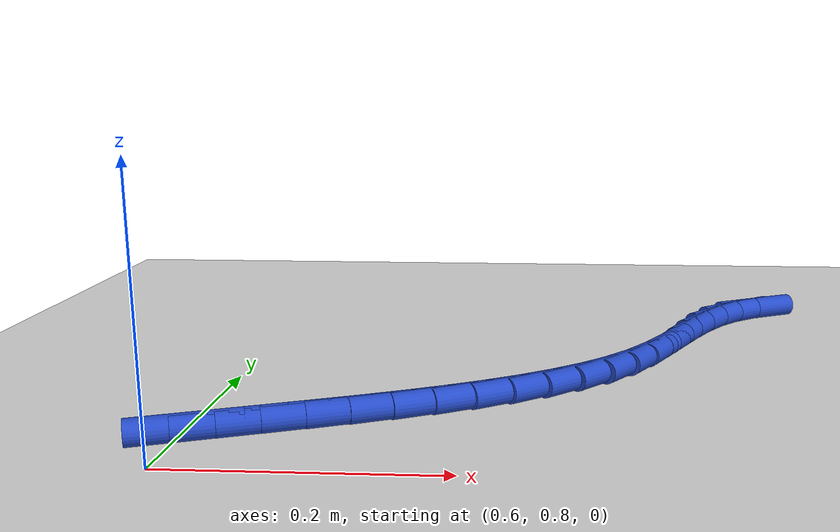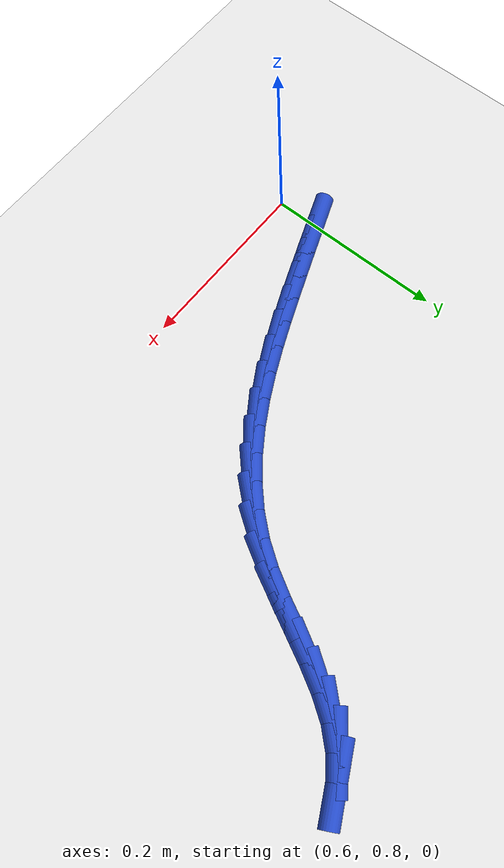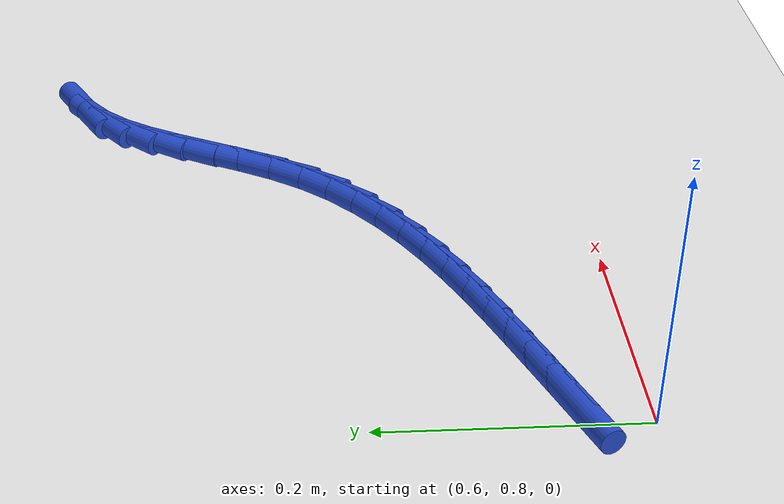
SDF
<sdf version="1.6">
 <world name="default">
  <model name="ground_plane">
   <static>1</static>
   <link name="link">
    <collision name="collision">
     <geometry><plane><normal>0 0 1</normal><size>100 100</size></plane></geometry>
     <surface><friction><ode><mu>100</mu><mu2>50</mu2></ode></friction></surface>
    </collision>
    <visual name="visual">
     <cast_shadows>0</cast_shadows>
     <geometry><plane><normal>0 0 1</normal><size>100 100</size></plane></geometry>
     <material>
      <script><uri>file://media/materials/scripts/gazebo.material</uri><name>Gazebo/WhiteGlow</name></script>
     </material>
    </visual>
   </link>
  </model>
  <model name="line">
   <link name="link_39">
    <pose>0.6072825982781304 0.8519247337269412 0.01 0 1.57 0.371072590450601</pose>
    <collision name="collision">
     <geometry><cylinder><radius>0.01</radius><length>0.08</length></cylinder></geometry>
    </collision>
    <visual name="visual">
     <material>
      <script><name>Gazebo/Blue</name><uri>file://media/materials/scripts/gazebo.material</uri></script>
     </material>
     <geometry><cylinder><radius>0.01</radius><length>0.08</length></cylinder></geometry>
    </visual>
   </link>
   <link name="link_40">
    <pose>0.6351087225578178 0.8627518125782321 0.01 0 1.57 0.3750394702391534</pose>
    <collision name="collision">
     <geometry><cylinder><radius>0.01</radius><length>0.08</length></cylinder></geometry>
    </collision>
    <visual name="visual">
     <material>
      <script><name>Gazebo/Blue</name><uri>file://media/materials/scripts/gazebo.material</uri></script>
     </material>
     <geometry><cylinder><radius>0.01</radius><length>0.08</length></cylinder></geometry>
    </visual>
   </link>
   <link name="link_41">
    <pose>0.6631180492522555 0.8737783047872529 0.01 0 1.57 0.3788108036732851</pose>
    <collision name="collision">
     <geometry><cylinder><radius>0.01</radius><length>0.08</length></cylinder></geometry>
    </collision>
    <visual name="visual">
     <material>
      <script><name>Gazebo/Blue</name><uri>file://media/materials/scripts/gazebo.material</uri></script>
     </material>
     <geometry><cylinder><radius>0.01</radius><length>0.08</length></cylinder></geometry>
    </visual>
   </link>
   <link name="link_42">
    <pose>0.6913684645730679 0.8850229437640316 0.01 0 1.57 0.38735656196633544</pose>
    <collision name="collision">
     <geometry><cylinder><radius>0.01</radius><length>0.08</length></cylinder></geometry>
    </collision>
    <visual name="visual">
     <material>
      <script><name>Gazebo/Blue</name><uri>file://media/materials/scripts/gazebo.material</uri></script>
     </material>
     <geometry><cylinder><radius>0.01</radius><length>0.08</length></cylinder></geometry>
    </visual>
   </link>
   <link name="link_43">
    <pose>0.7197598100594127 0.896605709095443 0.01 0 1.57 0.40611140686019187</pose>
    <collision name="collision">
     <geometry><cylinder><radius>0.01</radius><length>0.08</length></cylinder></geometry>
    </collision>
    <visual name="visual">
     <material>
      <script><name>Gazebo/Blue</name><uri>file://media/materials/scripts/gazebo.material</uri></script>
     </material>
     <geometry><cylinder><radius>0.01</radius><length>0.08</length></cylinder></geometry>
    </visual>
   </link>
   <link name="link_44">
    <pose>0.7480187691509006 0.9087575084704903 0.01 0 1.57 0.435545099000935</pose>
    <collision name="collision">
     <geometry><cylinder><radius>0.01</radius><length>0.08</length></cylinder></geometry>
    </collision>
    <visual name="visual">
     <material>
      <script><name>Gazebo/Blue</name><uri>file://media/materials/scripts/gazebo.material</uri></script>
     </material>
     <geometry><cylinder><radius>0.01</radius><length>0.08</length></cylinder></geometry>
    </visual>
   </link>
   <link name="link_45">
    <pose>0.7758631994407497 0.9217149035694885 0.01 0 1.57 0.47611266428190374</pose>
    <collision name="collision">
     <geometry><cylinder><radius>0.01</radius><length>0.08</length></cylinder></geometry>
    </collision>
    <visual name="visual">
     <material>
      <script><name>Gazebo/Blue</name><uri>file://media/materials/scripts/gazebo.material</uri></script>
     </material>
     <geometry><cylinder><radius>0.01</radius><length>0.08</length></cylinder></geometry>
    </visual>
   </link>
   <link name="link_46">
    <pose>0.8030109585221777 0.9357144560727523 0.01 0 1.57 0.5284465386728658</pose>
    <collision name="collision">
     <geometry><cylinder><radius>0.01</radius><length>0.08</length></cylinder></geometry>
    </collision>
    <visual name="visual">
     <material>
      <script><name>Gazebo/Blue</name><uri>file://media/materials/scripts/gazebo.material</uri></script>
     </material>
     <geometry><cylinder><radius>0.01</radius><length>0.08</length></cylinder></geometry>
    </visual>
   </link>
   <link name="link_47">
    <pose>0.8291799039884026 0.950992727660596 0.01 0 1.57 0.5932160414529968</pose>
    <collision name="collision">
     <geometry><cylinder><radius>0.01</radius><length>0.08</length></cylinder></geometry>
    </collision>
    <visual name="visual">
     <material>
      <script><name>Gazebo/Blue</name><uri>file://media/materials/scripts/gazebo.material</uri></script>
     </material>
     <geometry><cylinder><radius>0.01</radius><length>0.08</length></cylinder></geometry>
    </visual>
   </link>
   <link name="link_48">
    <pose>0.8540878934326424 0.9677862800133346 0.01 0 1.57 0.6709055320872783</pose>
    <collision name="collision">
     <geometry><cylinder><radius>0.01</radius><length>0.08</length></cylinder></geometry>
    </collision>
    <visual name="visual">
     <material>
      <script><name>Gazebo/Blue</name><uri>file://media/materials/scripts/gazebo.material</uri></script>
     </material>
     <geometry><cylinder><radius>0.01</radius><length>0.08</length></cylinder></geometry>
    </visual>
   </link>
   <link name="link_49">
    <pose>0.8774527844481144 0.9863316748112816 0.01 0 1.57 0.7614956853872528</pose>
    <collision name="collision">
     <geometry><cylinder><radius>0.01</radius><length>0.08</length></cylinder></geometry>
    </collision>
    <visual name="visual">
     <material>
      <script><name>Gazebo/Blue</name><uri>file://media/materials/scripts/gazebo.material</uri></script>
     </material>
     <geometry><cylinder><radius>0.01</radius><length>0.08</length></cylinder></geometry>
    </visual>
   </link>
   <link name="link_50">
    <pose>0.8989924346280368 1.0068654737347524 0.01 0 1.57 0.8640791148845518</pose>
    <collision name="collision">
     <geometry><cylinder><radius>0.01</radius><length>0.08</length></cylinder></geometry>
    </collision>
    <visual name="visual">
     <material>
      <script><name>Gazebo/Blue</name><uri>file://media/materials/scripts/gazebo.material</uri></script>
     </material>
     <geometry><cylinder><radius>0.01</radius><length>0.08</length></cylinder></geometry>
    </visual>
   </link>
   <link name="link_51">
    <pose>0.9184247015656273 1.029624238464061 0.01 0 1.57 0.9747205344733441</pose>
    <collision name="collision">
     <geometry><cylinder><radius>0.01</radius><length>0.08</length></cylinder></geometry>
    </collision>
    <visual name="visual">
     <material>
      <script><name>Gazebo/Blue</name><uri>file://media/materials/scripts/gazebo.material</uri></script>
     </material>
     <geometry><cylinder><radius>0.01</radius><length>0.08</length></cylinder></geometry>
    </visual>
   </link>
   <link name="link_52">
    <pose>0.9355039355843339 1.0548003191148174 0.01 0 1.57 1.0624680241747346</pose>
    <collision name="collision">
     <geometry><cylinder><radius>0.01</radius><length>0.08</length></cylinder></geometry>
    </collision>
    <visual name="visual">
     <material>
      <script><name>Gazebo/Blue</name><uri>file://media/materials/scripts/gazebo.material</uri></script>
     </material>
     <geometry><cylinder><radius>0.01</radius><length>0.08</length></cylinder></geometry>
    </visual>
   </link>
   <link name="link_53">
    <pose>0.9505819275423012 1.0818622564112694 0.01 0 1.57 1.107047828063826</pose>
    <collision name="collision">
     <geometry><cylinder><radius>0.01</radius><length>0.08</length></cylinder></geometry>
    </collision>
    <visual name="visual">
     <material>
      <script><name>Gazebo/Blue</name><uri>file://media/materials/scripts/gazebo.material</uri></script>
     </material>
     <geometry><cylinder><radius>0.01</radius><length>0.08</length></cylinder></geometry>
    </visual>
   </link>
   <link name="link_54">
    <pose>0.9644981729396145 1.1096877285908624 0.01 0 1.57 1.1105482751179812</pose>
    <collision name="collision">
     <geometry><cylinder><radius>0.01</radius><length>0.08</length></cylinder></geometry>
    </collision>
    <visual name="visual">
     <material>
      <script><name>Gazebo/Blue</name><uri>file://media/materials/scripts/gazebo.material</uri></script>
     </material>
     <geometry><cylinder><radius>0.01</radius><length>0.08</length></cylinder></geometry>
    </visual>
   </link>
   <link name="link_55">
    <pose>0.9781064290777485 1.1371371354755604 0.01 0 1.57 1.0712015805934152</pose>
    <collision name="collision">
     <geometry><cylinder><radius>0.01</radius><length>0.08</length></cylinder></geometry>
    </collision>
    <visual name="visual">
     <material>
      <script><name>Gazebo/Blue</name><uri>file://media/materials/scripts/gazebo.material</uri></script>
     </material>
     <geometry><cylinder><radius>0.01</radius><length>0.08</length></cylinder></geometry>
    </visual>
   </link>
   <link name="link_56">
    <pose>0.9922604532581784 1.163070876887328 0.01 0 1.57 0.9817664355590748</pose>
    <collision name="collision">
     <geometry><cylinder><radius>0.01</radius><length>0.08</length></cylinder></geometry>
    </collision>
    <visual name="visual">
     <material>
      <script><name>Gazebo/Blue</name><uri>file://media/materials/scripts/gazebo.material</uri></script>
     </material>
     <geometry><cylinder><radius>0.01</radius><length>0.08</length></cylinder></geometry>
    </visual>
   </link>
   <link name="link_57">
    <pose>1.007814002782379 1.1863493526481295 0.01 0 1.57 0.8328420207081312</pose>
    <collision name="collision">
     <geometry><cylinder><radius>0.01</radius><length>0.08</length></cylinder></geometry>
    </collision>
    <visual name="visual">
     <material>
      <script><name>Gazebo/Blue</name><uri>file://media/materials/scripts/gazebo.material</uri></script>
     </material>
     <geometry><cylinder><radius>0.01</radius><length>0.08</length></cylinder></geometry>
    </visual>
   </link>
   <link name="link_58">
    <pose>1.0255810537056407 1.2058876419827318 0.01 0 1.57 0.6538998330026936</pose>
    <collision name="collision">
     <geometry><cylinder><radius>0.01</radius><length>0.08</length></cylinder></geometry>
    </collision>
    <visual name="visual">
     <material>
      <script><name>Gazebo/Blue</name><uri>file://media/materials/scripts/gazebo.material</uri></script>
     </material>
     <geometry><cylinder><radius>0.01</radius><length>0.08</length></cylinder></geometry>
    </visual>
   </link>
   <link name="link_59">
    <pose>1.0458042035454191 1.221386185064083 0.01 0 1.57 0.481289551205289</pose>
    <collision name="collision">
     <geometry><cylinder><radius>0.01</radius><length>0.08</length></cylinder></geometry>
    </collision>
    <visual name="visual">
     <material>
      <script><name>Gazebo/Blue</name><uri>file://media/materials/scripts/gazebo.material</uri></script>
     </material>
     <geometry><cylinder><radius>0.01</radius><length>0.08</length></cylinder></geometry>
    </visual>
   </link>
  </model>
 </world>
</sdf>
